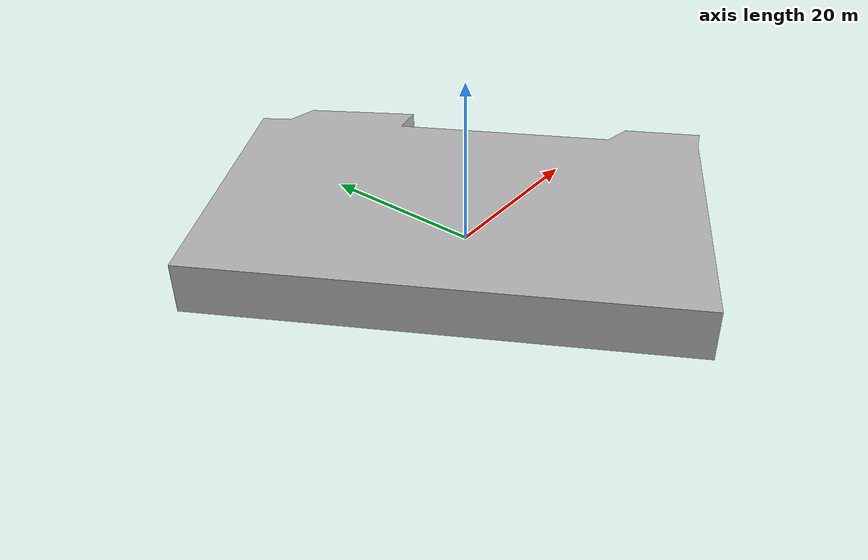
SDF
<?xml version="1.0" ?>
<sdf version="1.7">
  <model name="building_0166_assumed_a_construcoes_desportivas">
    <static>true</static>
    <link name="building_link">
      <visual name="building_visual">
        <geometry>
          <mesh>
            <uri>model://building_0166_assumed_a_construcoes_desportivas/meshes/construction_0166_assumed_A_Construcoes_desportivas_h6m.obj</uri>
          </mesh>
        </geometry>
      </visual>
    <collision name="building_collision">
      <geometry>
        <mesh>
          <uri>model://building_0166_assumed_a_construcoes_desportivas/meshes/construction_0166_assumed_A_Construcoes_desportivas_h6m.obj</uri>
        </mesh>
      </geometry>
    </collision>
    </link>
  </model>
</sdf>
